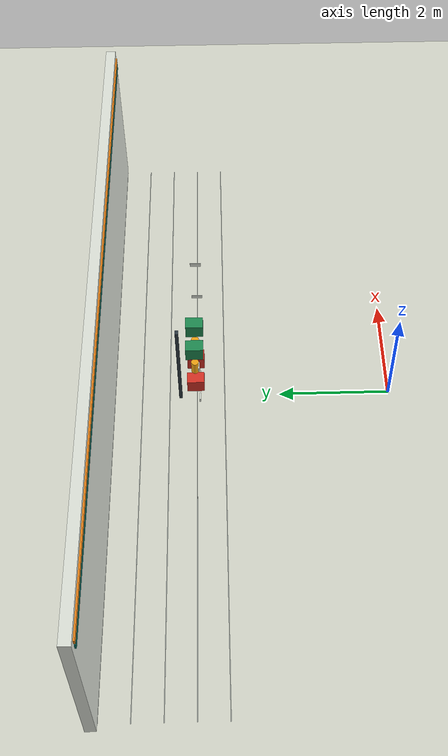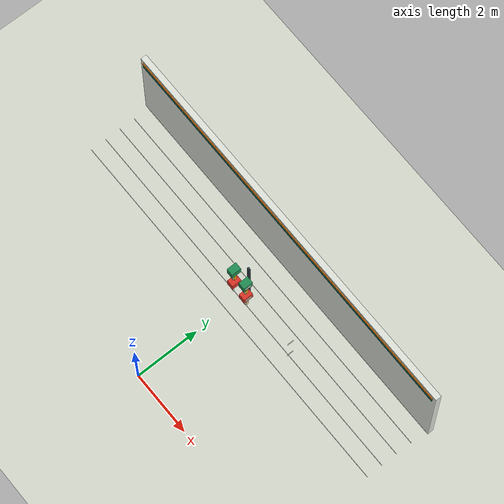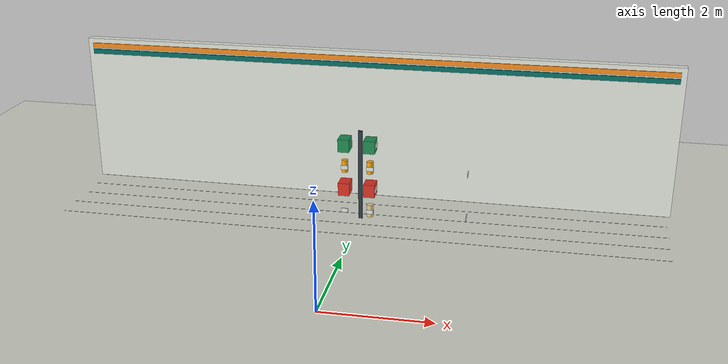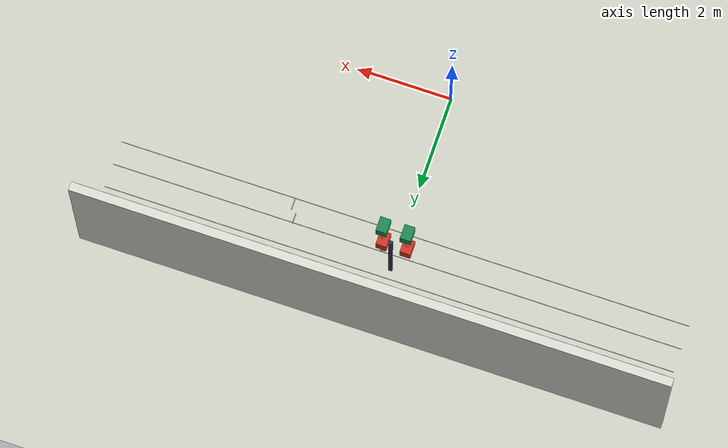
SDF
<sdf version="1.6">
 <world name="convenience_store">
  <model name="ground_plane">
   <static>true</static>
   <link name="ground_link">
    <collision name="ground_collision">
     <geometry><plane><normal>0 0 1</normal><size>100 100</size></plane></geometry>
     <surface><friction><ode><mu>1.0</mu><mu2>1.0</mu2></ode></friction></surface>
    </collision>
    <visual name="ground_visual">
     <geometry><plane><normal>0 0 1</normal><size>100 100</size></plane></geometry>
     <material><ambient>.84 .85 .80 1</ambient><diffuse>.84 .85 .80 1</diffuse></material>
    </visual>
   </link>
  </model>
  <model name="store_wall_north">
   <static>true</static>
   <pose>0 5.09 1.55 0 0 0</pose>
   <link name="body">
    <collision name="body_collision">
     <geometry><box><size>12.2 0.18 3.1</size></box></geometry>
     <surface><friction><ode><mu>.8</mu><mu2>.8</mu2></ode></friction></surface>
    </collision>
    <visual name="body_visual">
     <geometry><box><size>12.2 0.18 3.1</size></box></geometry>
     <material><ambient>.88 .90 .86 1</ambient><diffuse>.88 .90 .86 1</diffuse></material>
    </visual>
   </link>
  </model>
  <model name="back_fascia_0">
   <static>true</static>
   <pose>0 4.985 2.83 0 0 0</pose>
   <link name="body">
    <visual name="body_visual">
     <geometry><box><size>11.98 0.025 0.1</size></box></geometry>
     <material><ambient>.03 .43 .39 1</ambient><diffuse>.03 .43 .39 1</diffuse></material>
    </visual>
   </link>
  </model>
  <model name="back_fascia_1">
   <static>true</static>
   <pose>0 4.985 2.96 0 0 0</pose>
   <link name="body">
    <visual name="body_visual">
     <geometry><box><size>11.98 0.025 0.1</size></box></geometry>
     <material><ambient>.96 .54 .10 1</ambient><diffuse>.96 .54 .10 1</diffuse></material>
    </visual>
   </link>
  </model>
  <model name="tile_y_16">
   <static>true</static>
   <pose>0 3.0 0.001 0 0 0</pose>
   <link name="body">
    <visual name="body_visual">
     <geometry><box><size>12 0.012 0.001</size></box></geometry>
     <material><ambient>.63 .65 .63 1</ambient><diffuse>.63 .65 .63 1</diffuse></material>
    </visual>
   </link>
  </model>
  <model name="tile_y_17">
   <static>true</static>
   <pose>0 3.5 0.001 0 0 0</pose>
   <link name="body">
    <visual name="body_visual">
     <geometry><box><size>12 0.012 0.001</size></box></geometry>
     <material><ambient>.63 .65 .63 1</ambient><diffuse>.63 .65 .63 1</diffuse></material>
    </visual>
   </link>
  </model>
  <model name="tile_y_18">
   <static>true</static>
   <pose>0 4.0 0.001 0 0 0</pose>
   <link name="body">
    <visual name="body_visual">
     <geometry><box><size>12 0.012 0.001</size></box></geometry>
     <material><ambient>.63 .65 .63 1</ambient><diffuse>.63 .65 .63 1</diffuse></material>
    </visual>
   </link>
  </model>
  <model name="tile_y_19">
   <static>true</static>
   <pose>0 4.5 0.001 0 0 0</pose>
   <link name="body">
    <visual name="body_visual">
     <geometry><box><size>12 0.012 0.001</size></box></geometry>
     <material><ambient>.63 .65 .63 1</ambient><diffuse>.63 .65 .63 1</diffuse></material>
    </visual>
   </link>
  </model>
  <model name="tile_y_20">
   <static>true</static>
   <pose>0 5.0 0.001 0 0 0</pose>
   <link name="body">
    <visual name="body_visual">
     <geometry><box><size>12 0.012 0.001</size></box></geometry>
     <material><ambient>.63 .65 .63 1</ambient><diffuse>.63 .65 .63 1</diffuse></material>
    </visual>
   </link>
  </model>
  <model name="gondola_1_end_1">
   <static>true</static>
   <pose>0.0 3.8 0.925 0 0 0</pose>
   <link name="body">
    <collision name="body_collision">
     <geometry><box><size>0.08 0.055 1.85</size></box></geometry>
     <surface><friction><ode><mu>.8</mu><mu2>.8</mu2></ode></friction></surface>
    </collision>
    <visual name="body_visual">
     <geometry><box><size>0.08 0.055 1.85</size></box></geometry>
     <material><ambient>.18 .23 .26 1</ambient><diffuse>.18 .23 .26 1</diffuse></material>
    </visual>
   </link>
  </model>
  <model name="gondola_1_goods_0_-1_4_label">
   <static>true</static>
   <pose>-0.25 3.438 0.31 0 0 0</pose>
   <link name="body">
    <visual name="body_visual">
     <geometry><box><size>0.135 0.025 0.08</size></box></geometry>
     <material><ambient>.88 .90 .86 1</ambient><diffuse>.88 .90 .86 1</diffuse></material>
    </visual>
   </link>
  </model>
  <model name="gondola_1_goods_0_1_4">
   <static>true</static>
   <pose>0.25 3.5 0.3225 0 0 0</pose>
   <link name="body">
    <collision name="body_collision">
     <geometry><cylinder><length>0.245</length><radius>0.065</radius></cylinder></geometry>
     <surface><friction><ode><mu>.8</mu><mu2>.8</mu2></ode></friction></surface>
    </collision>
    <visual name="body_visual">
     <geometry><cylinder><length>0.245</length><radius>0.065</radius></cylinder></geometry>
     <material><ambient>.87 .79 .57 1</ambient><diffuse>.87 .79 .57 1</diffuse></material>
    </visual>
   </link>
  </model>
  <model name="gondola_1_goods_0_1_4_label">
   <static>true</static>
   <pose>0.25 3.438 0.31 0 0 0</pose>
   <link name="body">
    <visual name="body_visual">
     <geometry><box><size>0.135 0.025 0.08</size></box></geometry>
     <material><ambient>.88 .90 .86 1</ambient><diffuse>.88 .90 .86 1</diffuse></material>
    </visual>
   </link>
  </model>
  <model name="gondola_1_goods_1_-1_4">
   <static>true</static>
   <pose>-0.25 3.5 0.7775000000000001 0 0 0</pose>
   <link name="body">
    <collision name="body_collision">
     <geometry><box><size>0.22 0.3 0.255</size></box></geometry>
     <surface><friction><ode><mu>.8</mu><mu2>.8</mu2></ode></friction></surface>
    </collision>
    <visual name="body_visual">
     <geometry><box><size>0.22 0.3 0.255</size></box></geometry>
     <material><ambient>.86 .20 .15 1</ambient><diffuse>.86 .20 .15 1</diffuse></material>
    </visual>
   </link>
  </model>
  <model name="gondola_1_goods_1_1_4">
   <static>true</static>
   <pose>0.25 3.5 0.7775000000000001 0 0 0</pose>
   <link name="body">
    <collision name="body_collision">
     <geometry><box><size>0.22 0.3 0.255</size></box></geometry>
     <surface><friction><ode><mu>.8</mu><mu2>.8</mu2></ode></friction></surface>
    </collision>
    <visual name="body_visual">
     <geometry><box><size>0.22 0.3 0.255</size></box></geometry>
     <material><ambient>.86 .20 .15 1</ambient><diffuse>.86 .20 .15 1</diffuse></material>
    </visual>
   </link>
  </model>
  <model name="gondola_1_goods_1_1_4_label">
   <static>true</static>
   <pose>0.366 3.5 0.77 0 0 0</pose>
   <link name="body">
    <visual name="body_visual">
     <geometry><box><size>0.012 0.2 0.08</size></box></geometry>
     <material><ambient>.88 .90 .86 1</ambient><diffuse>.88 .90 .86 1</diffuse></material>
    </visual>
   </link>
  </model>
  <model name="gondola_1_goods_2_-1_4">
   <static>true</static>
   <pose>-0.25 3.5 1.2225000000000001 0 0 0</pose>
   <link name="body">
    <collision name="body_collision">
     <geometry><cylinder><length>0.245</length><radius>0.065</radius></cylinder></geometry>
     <surface><friction><ode><mu>.8</mu><mu2>.8</mu2></ode></friction></surface>
    </collision>
    <visual name="body_visual">
     <geometry><cylinder><length>0.245</length><radius>0.065</radius></cylinder></geometry>
     <material><ambient>.96 .65 .08 1</ambient><diffuse>.96 .65 .08 1</diffuse></material>
    </visual>
   </link>
  </model>
  <model name="gondola_1_goods_2_-1_4_label">
   <static>true</static>
   <pose>-0.25 3.438 1.2100000000000002 0 0 0</pose>
   <link name="body">
    <visual name="body_visual">
     <geometry><box><size>0.135 0.025 0.08</size></box></geometry>
     <material><ambient>.88 .90 .86 1</ambient><diffuse>.88 .90 .86 1</diffuse></material>
    </visual>
   </link>
  </model>
  <model name="gondola_1_goods_2_1_4">
   <static>true</static>
   <pose>0.25 3.5 1.2225000000000001 0 0 0</pose>
   <link name="body">
    <collision name="body_collision">
     <geometry><cylinder><length>0.245</length><radius>0.065</radius></cylinder></geometry>
     <surface><friction><ode><mu>.8</mu><mu2>.8</mu2></ode></friction></surface>
    </collision>
    <visual name="body_visual">
     <geometry><cylinder><length>0.245</length><radius>0.065</radius></cylinder></geometry>
     <material><ambient>.96 .65 .08 1</ambient><diffuse>.96 .65 .08 1</diffuse></material>
    </visual>
   </link>
  </model>
  <model name="gondola_1_goods_2_1_4_label">
   <static>true</static>
   <pose>0.25 3.438 1.2100000000000002 0 0 0</pose>
   <link name="body">
    <visual name="body_visual">
     <geometry><box><size>0.135 0.025 0.08</size></box></geometry>
     <material><ambient>.88 .90 .86 1</ambient><diffuse>.88 .90 .86 1</diffuse></material>
    </visual>
   </link>
  </model>
  <model name="gondola_1_goods_3_-1_4">
   <static>true</static>
   <pose>-0.25 3.5 1.6775 0 0 0</pose>
   <link name="body">
    <collision name="body_collision">
     <geometry><box><size>0.22 0.3 0.255</size></box></geometry>
     <surface><friction><ode><mu>.8</mu><mu2>.8</mu2></ode></friction></surface>
    </collision>
    <visual name="body_visual">
     <geometry><box><size>0.22 0.3 0.255</size></box></geometry>
     <material><ambient>.12 .55 .32 1</ambient><diffuse>.12 .55 .32 1</diffuse></material>
    </visual>
   </link>
  </model>
  <model name="gondola_1_goods_3_1_4">
   <static>true</static>
   <pose>0.25 3.5 1.6775 0 0 0</pose>
   <link name="body">
    <collision name="body_collision">
     <geometry><box><size>0.22 0.3 0.255</size></box></geometry>
     <surface><friction><ode><mu>.8</mu><mu2>.8</mu2></ode></friction></surface>
    </collision>
    <visual name="body_visual">
     <geometry><box><size>0.22 0.3 0.255</size></box></geometry>
     <material><ambient>.12 .55 .32 1</ambient><diffuse>.12 .55 .32 1</diffuse></material>
    </visual>
   </link>
  </model>
  <model name="gondola_1_goods_3_1_4_label">
   <static>true</static>
   <pose>0.366 3.5 1.67 0 0 0</pose>
   <link name="body">
    <visual name="body_visual">
     <geometry><box><size>0.012 0.2 0.08</size></box></geometry>
     <material><ambient>.88 .90 .86 1</ambient><diffuse>.88 .90 .86 1</diffuse></material>
    </visual>
   </link>
  </model>
  <model name="gondola_2_goods_0_-1_4_label">
   <static>true</static>
   <pose>2.134 3.5 0.32 0 0 0</pose>
   <link name="body">
    <visual name="body_visual">
     <geometry><box><size>0.012 0.2 0.08</size></box></geometry>
     <material><ambient>.88 .90 .86 1</ambient><diffuse>.88 .90 .86 1</diffuse></material>
    </visual>
   </link>
  </model>
  <model name="gondola_2_goods_2_-1_4_label">
   <static>true</static>
   <pose>2.134 3.5 1.2200000000000002 0 0 0</pose>
   <link name="body">
    <visual name="body_visual">
     <geometry><box><size>0.012 0.2 0.08</size></box></geometry>
     <material><ambient>.88 .90 .86 1</ambient><diffuse>.88 .90 .86 1</diffuse></material>
    </visual>
   </link>
  </model>
 </world>
</sdf>
